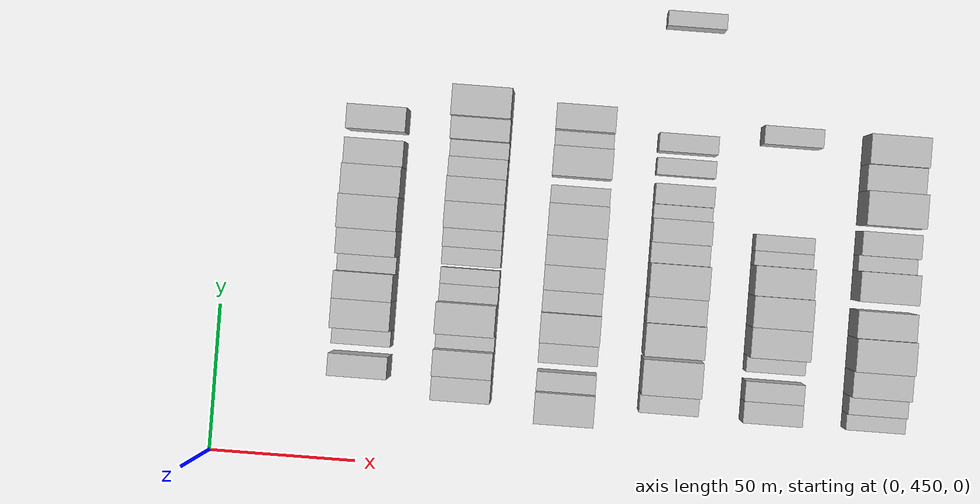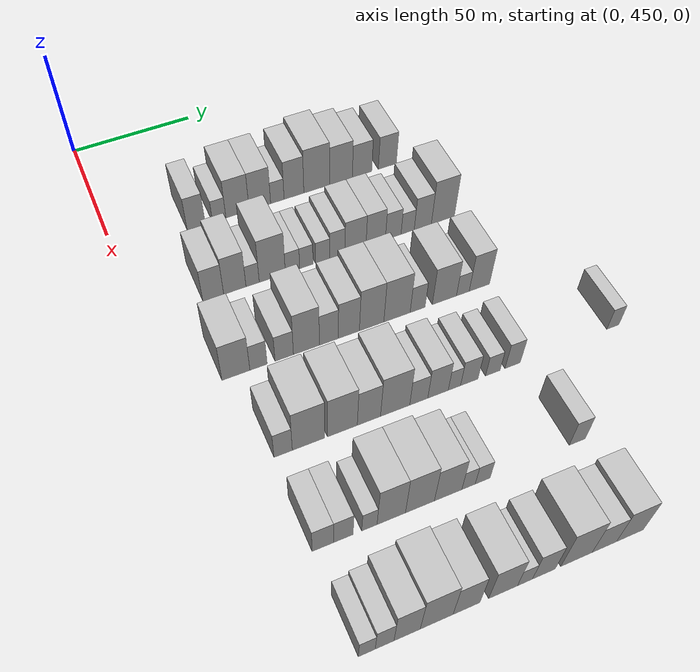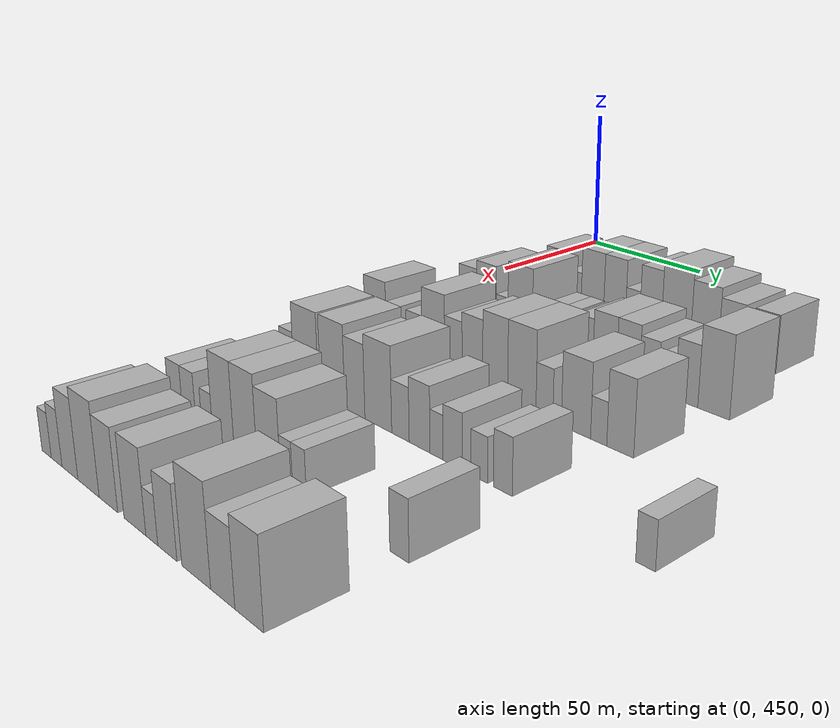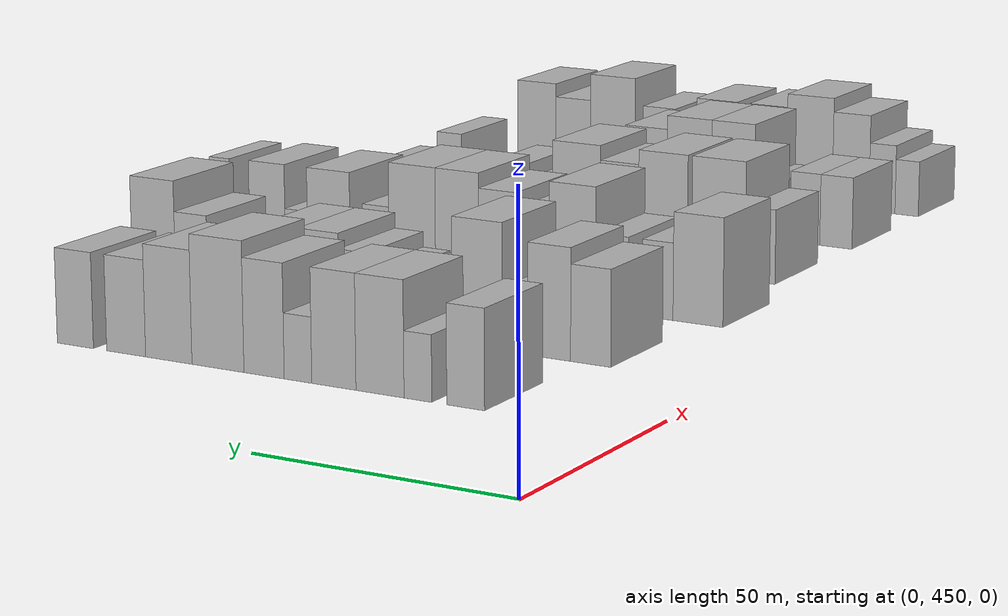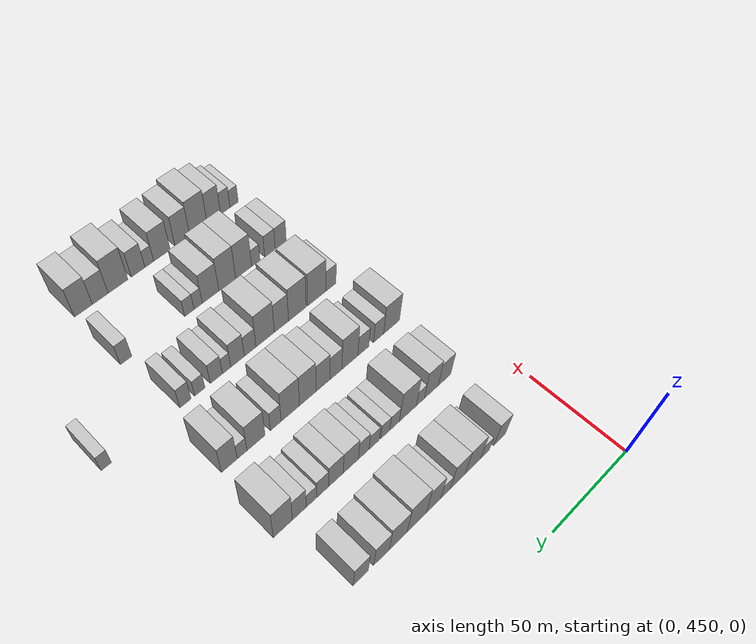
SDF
<sdf version="1.6">
 <world name="default">
  <model name="building_116">
   <static>1</static>
   <pose>50.0000 483.5216 0 0.000000 0.000000 0.000000</pose>
   <link name="link">
    <pose>0 0 9.00 0 0 0</pose>
    <collision name="collision"><geometry><box><size>20.0000 7.5172 18.0000</size></box></geometry></collision>
    <visual name="visual">
     <cast_shadows>0</cast_shadows>
     <geometry><box><size>20.0000 7.5172 18.0000</size></box></geometry>
     <material>
      <script>
       <uri>model://HANNAS_wall/materials/scripts</uri>
       <uri>model://HANNAS_wall/materials/textures</uri>
       <name>vrc/HANNAS_wall</name>
      </script>
     </material>
    </visual>
   </link>
  </model>
  <model name="building_117">
   <static>1</static>
   <pose>50.0000 493.0840 0 0.000000 0.000000 0.000000</pose>
   <link name="link">
    <pose>0 0 6.00 0 0 0</pose>
    <collision name="collision"><geometry><box><size>20.0000 5.6077 12.0000</size></box></geometry></collision>
    <visual name="visual">
     <cast_shadows>0</cast_shadows>
     <geometry><box><size>20.0000 5.6077 12.0000</size></box></geometry>
     <material>
      <script>
       <uri>model://HANNAS_wall/materials/scripts</uri>
       <uri>model://HANNAS_wall/materials/textures</uri>
       <name>vrc/HANNAS_wall</name>
      </script>
     </material>
    </visual>
   </link>
  </model>
  <model name="building_118">
   <static>1</static>
   <pose>50.0000 500.8014 0 0.000000 0.000000 0.000000</pose>
   <link name="link">
    <pose>0 0 10.50 0 0 0</pose>
    <collision name="collision"><geometry><box><size>20.0000 9.8270 21.0000</size></box></geometry></collision>
    <visual name="visual">
     <cast_shadows>0</cast_shadows>
     <geometry><box><size>20.0000 9.8270 21.0000</size></box></geometry>
     <material>
      <script>
       <uri>model://HANNAS_wall/materials/scripts</uri>
       <uri>model://HANNAS_wall/materials/textures</uri>
       <name>vrc/HANNAS_wall</name>
      </script>
     </material>
    </visual>
   </link>
  </model>
  <model name="building_119">
   <static>1</static>
   <pose>50.0000 510.3092 0 0.000000 0.000000 0.000000</pose>
   <link name="link">
    <pose>0 0 10.50 0 0 0</pose>
    <collision name="collision"><geometry><box><size>20.0000 9.1886 21.0000</size></box></geometry></collision>
    <visual name="visual">
     <cast_shadows>0</cast_shadows>
     <geometry><box><size>20.0000 9.1886 21.0000</size></box></geometry>
     <material>
      <script>
       <uri>model://HANNAS_wall/materials/scripts</uri>
       <uri>model://HANNAS_wall/materials/textures</uri>
       <name>vrc/HANNAS_wall</name>
      </script>
     </material>
    </visual>
   </link>
  </model>
  <model name="building_120">
   <static>1</static>
   <pose>50.0000 517.8039 0 0.000000 0.000000 0.000000</pose>
   <link name="link">
    <pose>0 0 6.00 0 0 0</pose>
    <collision name="collision"><geometry><box><size>20.0000 5.8008 12.0000</size></box></geometry></collision>
    <visual name="visual">
     <cast_shadows>0</cast_shadows>
     <geometry><box><size>20.0000 5.8008 12.0000</size></box></geometry>
     <material>
      <script>
       <uri>model://HANNAS_wall/materials/scripts</uri>
       <uri>model://HANNAS_wall/materials/textures</uri>
       <name>vrc/HANNAS_wall</name>
      </script>
     </material>
    </visual>
   </link>
  </model>
  <model name="building_121">
   <static>1</static>
   <pose>50.0000 524.9991 0 0.000000 0.000000 0.000000</pose>
   <link name="link">
    <pose>0 0 10.50 0 0 0</pose>
    <collision name="collision"><geometry><box><size>20.0000 8.5896 21.0000</size></box></geometry></collision>
    <visual name="visual">
     <cast_shadows>0</cast_shadows>
     <geometry><box><size>20.0000 8.5896 21.0000</size></box></geometry>
     <material>
      <script>
       <uri>model://HANNAS_wall/materials/scripts</uri>
       <uri>model://HANNAS_wall/materials/textures</uri>
       <name>vrc/HANNAS_wall</name>
      </script>
     </material>
    </visual>
   </link>
  </model>
  <model name="building_122">
   <static>1</static>
   <pose>50.0000 534.9274 0 0.000000 0.000000 0.000000</pose>
   <link name="link">
    <pose>0 0 12.00 0 0 0</pose>
    <collision name="collision"><geometry><box><size>20.0000 11.2670 24.0000</size></box></geometry></collision>
    <visual name="visual">
     <cast_shadows>0</cast_shadows>
     <geometry><box><size>20.0000 11.2670 24.0000</size></box></geometry>
     <material>
      <script>
       <uri>model://HANNAS_wall/materials/scripts</uri>
       <uri>model://HANNAS_wall/materials/textures</uri>
       <name>vrc/HANNAS_wall</name>
      </script>
     </material>
    </visual>
   </link>
  </model>
  <model name="building_123">
   <static>1</static>
   <pose>50.0000 545.6705 0 0.000000 0.000000 0.000000</pose>
   <link name="link">
    <pose>0 0 10.50 0 0 0</pose>
    <collision name="collision"><geometry><box><size>20.0000 10.2193 21.0000</size></box></geometry></collision>
    <visual name="visual">
     <cast_shadows>0</cast_shadows>
     <geometry><box><size>20.0000 10.2193 21.0000</size></box></geometry>
     <material>
      <script>
       <uri>model://HANNAS_wall/materials/scripts</uri>
       <uri>model://HANNAS_wall/materials/textures</uri>
       <name>vrc/HANNAS_wall</name>
      </script>
     </material>
    </visual>
   </link>
  </model>
  <model name="building_124">
   <static>1</static>
   <pose>50.0000 555.1453 0 0.000000 0.000000 0.000000</pose>
   <link name="link">
    <pose>0 0 9.00 0 0 0</pose>
    <collision name="collision"><geometry><box><size>20.0000 8.7303 18.0000</size></box></geometry></collision>
    <visual name="visual">
     <cast_shadows>0</cast_shadows>
     <geometry><box><size>20.0000 8.7303 18.0000</size></box></geometry>
     <material>
      <script>
       <uri>model://HANNAS_wall/materials/scripts</uri>
       <uri>model://HANNAS_wall/materials/textures</uri>
       <name>vrc/HANNAS_wall</name>
      </script>
     </material>
    </visual>
   </link>
  </model>
  <model name="building_125">
   <static>1</static>
   <pose>50.0000 566.6297 0 0.000000 0.000000 0.000000</pose>
   <link name="link">
    <pose>0 0 9.00 0 0 0</pose>
    <collision name="collision"><geometry><box><size>20.0000 8.2386 18.0000</size></box></geometry></collision>
    <visual name="visual">
     <cast_shadows>0</cast_shadows>
     <geometry><box><size>20.0000 8.2386 18.0000</size></box></geometry>
     <material>
      <script>
       <uri>model://HANNAS_wall/materials/scripts</uri>
       <uri>model://HANNAS_wall/materials/textures</uri>
       <name>vrc/HANNAS_wall</name>
      </script>
     </material>
    </visual>
   </link>
  </model>
  <model name="building_248">
   <static>1</static>
   <pose>85.0000 478.3432 0 0.000000 0.000000 0.000000</pose>
   <link name="link">
    <pose>0 0 9.00 0 0 0</pose>
    <collision name="collision"><geometry><box><size>20.0000 8.2118 18.0000</size></box></geometry></collision>
    <visual name="visual">
     <cast_shadows>0</cast_shadows>
     <geometry><box><size>20.0000 8.2118 18.0000</size></box></geometry>
     <material>
      <script>
       <uri>model://HANNAS_wall/materials/scripts</uri>
       <uri>model://HANNAS_wall/materials/textures</uri>
       <name>vrc/HANNAS_wall</name>
      </script>
     </material>
    </visual>
   </link>
  </model>
  <model name="building_249">
   <static>1</static>
   <pose>85.0000 486.9014 0 0.000000 0.000000 0.000000</pose>
   <link name="link">
    <pose>0 0 10.50 0 0 0</pose>
    <collision name="collision"><geometry><box><size>20.0000 8.9047 21.0000</size></box></geometry></collision>
    <visual name="visual">
     <cast_shadows>0</cast_shadows>
     <geometry><box><size>20.0000 8.9047 21.0000</size></box></geometry>
     <material>
      <script>
       <uri>model://HANNAS_wall/materials/scripts</uri>
       <uri>model://HANNAS_wall/materials/textures</uri>
       <name>vrc/HANNAS_wall</name>
      </script>
     </material>
    </visual>
   </link>
  </model>
  <model name="building_250">
   <static>1</static>
   <pose>85.0000 494.0122 0 0.000000 0.000000 0.000000</pose>
   <link name="link">
    <pose>0 0 6.00 0 0 0</pose>
    <collision name="collision"><geometry><box><size>20.0000 5.3167 12.0000</size></box></geometry></collision>
    <visual name="visual">
     <cast_shadows>0</cast_shadows>
     <geometry><box><size>20.0000 5.3167 12.0000</size></box></geometry>
     <material>
      <script>
       <uri>model://HANNAS_wall/materials/scripts</uri>
       <uri>model://HANNAS_wall/materials/textures</uri>
       <name>vrc/HANNAS_wall</name>
      </script>
     </material>
    </visual>
   </link>
  </model>
  <model name="building_251">
   <static>1</static>
   <pose>85.0000 501.9636 0 0.000000 0.000000 0.000000</pose>
   <link name="link">
    <pose>0 0 12.00 0 0 0</pose>
    <collision name="collision"><geometry><box><size>20.0000 10.5862 24.0000</size></box></geometry></collision>
    <visual name="visual">
     <cast_shadows>0</cast_shadows>
     <geometry><box><size>20.0000 10.5862 24.0000</size></box></geometry>
     <material>
      <script>
       <uri>model://HANNAS_wall/materials/scripts</uri>
       <uri>model://HANNAS_wall/materials/textures</uri>
       <name>vrc/HANNAS_wall</name>
      </script>
     </material>
    </visual>
   </link>
  </model>
  <model name="building_252">
   <static>1</static>
   <pose>85.0000 510.1905 0 0.000000 0.000000 0.000000</pose>
   <link name="link">
    <pose>0 0 6.00 0 0 0</pose>
    <collision name="collision"><geometry><box><size>20.0000 5.8675 12.0000</size></box></geometry></collision>
    <visual name="visual">
     <cast_shadows>0</cast_shadows>
     <geometry><box><size>20.0000 5.8675 12.0000</size></box></geometry>
     <material>
      <script>
       <uri>model://HANNAS_wall/materials/scripts</uri>
       <uri>model://HANNAS_wall/materials/textures</uri>
       <name>vrc/HANNAS_wall</name>
      </script>
     </material>
    </visual>
   </link>
  </model>
  <model name="building_253">
   <static>1</static>
   <pose>85.0000 515.8932 0 0.000000 0.000000 0.000000</pose>
   <link name="link">
    <pose>0 0 6.00 0 0 0</pose>
    <collision name="collision"><geometry><box><size>20.0000 5.5378 12.0000</size></box></geometry></collision>
    <visual name="visual">
     <cast_shadows>0</cast_shadows>
     <geometry><box><size>20.0000 5.5378 12.0000</size></box></geometry>
     <material>
      <script>
       <uri>model://HANNAS_wall/materials/scripts</uri>
       <uri>model://HANNAS_wall/materials/textures</uri>
       <name>vrc/HANNAS_wall</name>
      </script>
     </material>
    </visual>
   </link>
  </model>
  <model name="building_254">
   <static>1</static>
   <pose>85.0000 522.6562 0 0.000000 0.000000 0.000000</pose>
   <link name="link">
    <pose>0 0 6.00 0 0 0</pose>
    <collision name="collision"><geometry><box><size>20.0000 5.9884 12.0000</size></box></geometry></collision>
    <visual name="visual">
     <cast_shadows>0</cast_shadows>
     <geometry><box><size>20.0000 5.9884 12.0000</size></box></geometry>
     <material>
      <script>
       <uri>model://HANNAS_wall/materials/scripts</uri>
       <uri>model://HANNAS_wall/materials/textures</uri>
       <name>vrc/HANNAS_wall</name>
      </script>
     </material>
    </visual>
   </link>
  </model>
  <model name="building_255">
   <static>1</static>
   <pose>85.0000 528.7964 0 0.000000 0.000000 0.000000</pose>
   <link name="link">
    <pose>0 0 7.50 0 0 0</pose>
    <collision name="collision"><geometry><box><size>20.0000 6.2919 15.0000</size></box></geometry></collision>
    <visual name="visual">
     <cast_shadows>0</cast_shadows>
     <geometry><box><size>20.0000 6.2919 15.0000</size></box></geometry>
     <material>
      <script>
       <uri>model://HANNAS_wall/materials/scripts</uri>
       <uri>model://HANNAS_wall/materials/textures</uri>
       <name>vrc/HANNAS_wall</name>
      </script>
     </material>
    </visual>
   </link>
  </model>
  <model name="building_256">
   <static>1</static>
   <pose>85.0000 536.4302 0 0.000000 0.000000 0.000000</pose>
   <link name="link">
    <pose>0 0 9.00 0 0 0</pose>
    <collision name="collision"><geometry><box><size>20.0000 8.9757 18.0000</size></box></geometry></collision>
    <visual name="visual">
     <cast_shadows>0</cast_shadows>
     <geometry><box><size>20.0000 8.9757 18.0000</size></box></geometry>
     <material>
      <script>
       <uri>model://HANNAS_wall/materials/scripts</uri>
       <uri>model://HANNAS_wall/materials/textures</uri>
       <name>vrc/HANNAS_wall</name>
      </script>
     </material>
    </visual>
   </link>
  </model>
  <model name="building_257">
   <static>1</static>
   <pose>85.0000 545.0692 0 0.000000 0.000000 0.000000</pose>
   <link name="link">
    <pose>0 0 9.00 0 0 0</pose>
    <collision name="collision"><geometry><box><size>20.0000 8.3023 18.0000</size></box></geometry></collision>
    <visual name="visual">
     <cast_shadows>0</cast_shadows>
     <geometry><box><size>20.0000 8.3023 18.0000</size></box></geometry>
     <material>
      <script>
       <uri>model://HANNAS_wall/materials/scripts</uri>
       <uri>model://HANNAS_wall/materials/textures</uri>
       <name>vrc/HANNAS_wall</name>
      </script>
     </material>
    </visual>
   </link>
  </model>
  <model name="building_258">
   <static>1</static>
   <pose>85.0000 552.6063 0 0.000000 0.000000 0.000000</pose>
   <link name="link">
    <pose>0 0 7.50 0 0 0</pose>
    <collision name="collision"><geometry><box><size>20.0000 6.7719 15.0000</size></box></geometry></collision>
    <visual name="visual">
     <cast_shadows>0</cast_shadows>
     <geometry><box><size>20.0000 6.7719 15.0000</size></box></geometry>
     <material>
      <script>
       <uri>model://HANNAS_wall/materials/scripts</uri>
       <uri>model://HANNAS_wall/materials/textures</uri>
       <name>vrc/HANNAS_wall</name>
      </script>
     </material>
    </visual>
   </link>
  </model>
  <model name="building_259">
   <static>1</static>
   <pose>85.0000 558.8656 0 0.000000 0.000000 0.000000</pose>
   <link name="link">
    <pose>0 0 6.00 0 0 0</pose>
    <collision name="collision"><geometry><box><size>20.0000 5.7467 12.0000</size></box></geometry></collision>
    <visual name="visual">
     <cast_shadows>0</cast_shadows>
     <geometry><box><size>20.0000 5.7467 12.0000</size></box></geometry>
     <material>
      <script>
       <uri>model://HANNAS_wall/materials/scripts</uri>
       <uri>model://HANNAS_wall/materials/textures</uri>
       <name>vrc/HANNAS_wall</name>
      </script>
     </material>
    </visual>
   </link>
  </model>
  <model name="building_260">
   <static>1</static>
   <pose>85.0000 565.5076 0 0.000000 0.000000 0.000000</pose>
   <link name="link">
    <pose>0 0 9.00 0 0 0</pose>
    <collision name="collision"><geometry><box><size>20.0000 7.5373 18.0000</size></box></geometry></collision>
    <visual name="visual">
     <cast_shadows>0</cast_shadows>
     <geometry><box><size>20.0000 7.5373 18.0000</size></box></geometry>
     <material>
      <script>
       <uri>model://HANNAS_wall/materials/scripts</uri>
       <uri>model://HANNAS_wall/materials/textures</uri>
       <name>vrc/HANNAS_wall</name>
      </script>
     </material>
    </visual>
   </link>
  </model>
  <model name="building_261">
   <static>1</static>
   <pose>85.0000 574.3885 0 0.000000 0.000000 0.000000</pose>
   <link name="link">
    <pose>0 0 12.00 0 0 0</pose>
    <collision name="collision"><geometry><box><size>20.0000 10.2246 24.0000</size></box></geometry></collision>
    <visual name="visual">
     <cast_shadows>0</cast_shadows>
     <geometry><box><size>20.0000 10.2246 24.0000</size></box></geometry>
     <material>
      <script>
       <uri>model://HANNAS_wall/materials/scripts</uri>
       <uri>model://HANNAS_wall/materials/textures</uri>
       <name>vrc/HANNAS_wall</name>
      </script>
     </material>
    </visual>
   </link>
  </model>
  <model name="building_369">
   <static>1</static>
   <pose>120.0000 474.5361 0 0.000000 0.000000 0.000000</pose>
   <link name="link">
    <pose>0 0 10.50 0 0 0</pose>
    <collision name="collision"><geometry><box><size>20.0000 10.4964 21.0000</size></box></geometry></collision>
    <visual name="visual">
     <cast_shadows>0</cast_shadows>
     <geometry><box><size>20.0000 10.4964 21.0000</size></box></geometry>
     <material>
      <script>
       <uri>model://HANNAS_wall/materials/scripts</uri>
       <uri>model://HANNAS_wall/materials/textures</uri>
       <name>vrc/HANNAS_wall</name>
      </script>
     </material>
    </visual>
   </link>
  </model>
  <model name="building_370">
   <static>1</static>
   <pose>120.0000 483.0600 0 0.000000 0.000000 0.000000</pose>
   <link name="link">
    <pose>0 0 7.50 0 0 0</pose>
    <collision name="collision"><geometry><box><size>20.0000 6.5514 15.0000</size></box></geometry></collision>
    <visual name="visual">
     <cast_shadows>0</cast_shadows>
     <geometry><box><size>20.0000 6.5514 15.0000</size></box></geometry>
     <material>
      <script>
       <uri>model://HANNAS_wall/materials/scripts</uri>
       <uri>model://HANNAS_wall/materials/textures</uri>
       <name>vrc/HANNAS_wall</name>
      </script>
     </material>
    </visual>
   </link>
  </model>
  <model name="building_371">
   <static>1</static>
   <pose>120.0000 492.8618 0 0.000000 0.000000 0.000000</pose>
   <link name="link">
    <pose>0 0 7.50 0 0 0</pose>
    <collision name="collision"><geometry><box><size>20.0000 7.0521 15.0000</size></box></geometry></collision>
    <visual name="visual">
     <cast_shadows>0</cast_shadows>
     <geometry><box><size>20.0000 7.0521 15.0000</size></box></geometry>
     <material>
      <script>
       <uri>model://HANNAS_wall/materials/scripts</uri>
       <uri>model://HANNAS_wall/materials/textures</uri>
       <name>vrc/HANNAS_wall</name>
      </script>
     </material>
    </visual>
   </link>
  </model>
  <model name="building_372">
   <static>1</static>
   <pose>120.0000 501.4267 0 0.000000 0.000000 0.000000</pose>
   <link name="link">
    <pose>0 0 12.00 0 0 0</pose>
    <collision name="collision"><geometry><box><size>20.0000 10.0778 24.0000</size></box></geometry></collision>
    <visual name="visual">
     <cast_shadows>0</cast_shadows>
     <geometry><box><size>20.0000 10.0778 24.0000</size></box></geometry>
     <material>
      <script>
       <uri>model://HANNAS_wall/materials/scripts</uri>
       <uri>model://HANNAS_wall/materials/textures</uri>
       <name>vrc/HANNAS_wall</name>
      </script>
     </material>
    </visual>
   </link>
  </model>
  <model name="building_373">
   <static>1</static>
   <pose>120.0000 510.1527 0 0.000000 0.000000 0.000000</pose>
   <link name="link">
    <pose>0 0 9.00 0 0 0</pose>
    <collision name="collision"><geometry><box><size>20.0000 7.3742 18.0000</size></box></geometry></collision>
    <visual name="visual">
     <cast_shadows>0</cast_shadows>
     <geometry><box><size>20.0000 7.3742 18.0000</size></box></geometry>
     <material>
      <script>
       <uri>model://HANNAS_wall/materials/scripts</uri>
       <uri>model://HANNAS_wall/materials/textures</uri>
       <name>vrc/HANNAS_wall</name>
      </script>
     </material>
    </visual>
   </link>
  </model>
  <model name="building_374">
   <static>1</static>
   <pose>120.0000 518.0558 0 0.000000 0.000000 0.000000</pose>
   <link name="link">
    <pose>0 0 10.50 0 0 0</pose>
    <collision name="collision"><geometry><box><size>20.0000 8.4321 21.0000</size></box></geometry></collision>
    <visual name="visual">
     <cast_shadows>0</cast_shadows>
     <geometry><box><size>20.0000 8.4321 21.0000</size></box></geometry>
     <material>
      <script>
       <uri>model://HANNAS_wall/materials/scripts</uri>
       <uri>model://HANNAS_wall/materials/textures</uri>
       <name>vrc/HANNAS_wall</name>
      </script>
     </material>
    </visual>
   </link>
  </model>
  <model name="building_375">
   <static>1</static>
   <pose>120.0000 527.1910 0 0.000000 0.000000 0.000000</pose>
   <link name="link">
    <pose>0 0 12.00 0 0 0</pose>
    <collision name="collision"><geometry><box><size>20.0000 9.8383 24.0000</size></box></geometry></collision>
    <visual name="visual">
     <cast_shadows>0</cast_shadows>
     <geometry><box><size>20.0000 9.8383 24.0000</size></box></geometry>
     <material>
      <script>
       <uri>model://HANNAS_wall/materials/scripts</uri>
       <uri>model://HANNAS_wall/materials/textures</uri>
       <name>vrc/HANNAS_wall</name>
      </script>
     </material>
    </visual>
   </link>
  </model>
  <model name="building_376">
   <static>1</static>
   <pose>120.0000 537.4657 0 0.000000 0.000000 0.000000</pose>
   <link name="link">
    <pose>0 0 12.00 0 0 0</pose>
    <collision name="collision"><geometry><box><size>20.0000 10.7111 24.0000</size></box></geometry></collision>
    <visual name="visual">
     <cast_shadows>0</cast_shadows>
     <geometry><box><size>20.0000 10.7111 24.0000</size></box></geometry>
     <material>
      <script>
       <uri>model://HANNAS_wall/materials/scripts</uri>
       <uri>model://HANNAS_wall/materials/textures</uri>
       <name>vrc/HANNAS_wall</name>
      </script>
     </material>
    </visual>
   </link>
  </model>
  <model name="building_377">
   <static>1</static>
   <pose>120.0000 545.8925 0 0.000000 0.000000 0.000000</pose>
   <link name="link">
    <pose>0 0 7.50 0 0 0</pose>
    <collision name="collision"><geometry><box><size>20.0000 6.1425 15.0000</size></box></geometry></collision>
    <visual name="visual">
     <cast_shadows>0</cast_shadows>
     <geometry><box><size>20.0000 6.1425 15.0000</size></box></geometry>
     <material>
      <script>
       <uri>model://HANNAS_wall/materials/scripts</uri>
       <uri>model://HANNAS_wall/materials/textures</uri>
       <name>vrc/HANNAS_wall</name>
      </script>
     </material>
    </visual>
   </link>
  </model>
  <model name="building_378">
   <static>1</static>
   <pose>120.0000 557.0140 0 0.000000 0.000000 0.000000</pose>
   <link name="link">
    <pose>0 0 10.50 0 0 0</pose>
    <collision name="collision"><geometry><box><size>20.0000 10.1005 21.0000</size></box></geometry></collision>
    <visual name="visual">
     <cast_shadows>0</cast_shadows>
     <geometry><box><size>20.0000 10.1005 21.0000</size></box></geometry>
     <material>
      <script>
       <uri>model://HANNAS_wall/materials/scripts</uri>
       <uri>model://HANNAS_wall/materials/textures</uri>
       <name>vrc/HANNAS_wall</name>
      </script>
     </material>
    </visual>
   </link>
  </model>
  <model name="building_379">
   <static>1</static>
   <pose>120.0000 564.7549 0 0.000000 0.000000 0.000000</pose>
   <link name="link">
    <pose>0 0 6.00 0 0 0</pose>
    <collision name="collision"><geometry><box><size>20.0000 5.3813 12.0000</size></box></geometry></collision>
    <visual name="visual">
     <cast_shadows>0</cast_shadows>
     <geometry><box><size>20.0000 5.3813 12.0000</size></box></geometry>
     <material>
      <script>
       <uri>model://HANNAS_wall/materials/scripts</uri>
       <uri>model://HANNAS_wall/materials/textures</uri>
       <name>vrc/HANNAS_wall</name>
      </script>
     </material>
    </visual>
   </link>
  </model>
  <model name="building_380">
   <static>1</static>
   <pose>120.0000 571.7618 0 0.000000 0.000000 0.000000</pose>
   <link name="link">
    <pose>0 0 10.50 0 0 0</pose>
    <collision name="collision"><geometry><box><size>20.0000 8.6325 21.0000</size></box></geometry></collision>
    <visual name="visual">
     <cast_shadows>0</cast_shadows>
     <geometry><box><size>20.0000 8.6325 21.0000</size></box></geometry>
     <material>
      <script>
       <uri>model://HANNAS_wall/materials/scripts</uri>
       <uri>model://HANNAS_wall/materials/textures</uri>
       <name>vrc/HANNAS_wall</name>
      </script>
     </material>
    </visual>
   </link>
  </model>
  <model name="building_495">
   <static>1</static>
   <pose>155.0000 478.5108 0 0.000000 0.000000 0.000000</pose>
   <link name="link">
    <pose>0 0 7.50 0 0 0</pose>
    <collision name="collision"><geometry><box><size>20.0000 6.5893 15.0000</size></box></geometry></collision>
    <visual name="visual">
     <cast_shadows>0</cast_shadows>
     <geometry><box><size>20.0000 6.5893 15.0000</size></box></geometry>
     <material>
      <script>
       <uri>model://HANNAS_wall/materials/scripts</uri>
       <uri>model://HANNAS_wall/materials/textures</uri>
       <name>vrc/HANNAS_wall</name>
      </script>
     </material>
    </visual>
   </link>
  </model>
  <model name="building_496">
   <static>1</static>
   <pose>155.0000 487.7105 0 0.000000 0.000000 0.000000</pose>
   <link name="link">
    <pose>0 0 12.00 0 0 0</pose>
    <collision name="collision"><geometry><box><size>20.0000 11.8101 24.0000</size></box></geometry></collision>
    <visual name="visual">
     <cast_shadows>0</cast_shadows>
     <geometry><box><size>20.0000 11.8101 24.0000</size></box></geometry>
     <material>
      <script>
       <uri>model://HANNAS_wall/materials/scripts</uri>
       <uri>model://HANNAS_wall/materials/textures</uri>
       <name>vrc/HANNAS_wall</name>
      </script>
     </material>
    </visual>
   </link>
  </model>
  <model name="building_497">
   <static>1</static>
   <pose>155.0000 500.1315 0 0.000000 0.000000 0.000000</pose>
   <link name="link">
    <pose>0 0 12.00 0 0 0</pose>
    <collision name="collision"><geometry><box><size>20.0000 11.0320 24.0000</size></box></geometry></collision>
    <visual name="visual">
     <cast_shadows>0</cast_shadows>
     <geometry><box><size>20.0000 11.0320 24.0000</size></box></geometry>
     <material>
      <script>
       <uri>model://HANNAS_wall/materials/scripts</uri>
       <uri>model://HANNAS_wall/materials/textures</uri>
       <name>vrc/HANNAS_wall</name>
      </script>
     </material>
    </visual>
   </link>
  </model>
  <model name="building_498">
   <static>1</static>
   <pose>155.0000 510.0110 0 0.000000 0.000000 0.000000</pose>
   <link name="link">
    <pose>0 0 10.50 0 0 0</pose>
    <collision name="collision"><geometry><box><size>20.0000 8.7270 21.0000</size></box></geometry></collision>
    <visual name="visual">
     <cast_shadows>0</cast_shadows>
     <geometry><box><size>20.0000 8.7270 21.0000</size></box></geometry>
     <material>
      <script>
       <uri>model://HANNAS_wall/materials/scripts</uri>
       <uri>model://HANNAS_wall/materials/textures</uri>
       <name>vrc/HANNAS_wall</name>
      </script>
     </material>
    </visual>
   </link>
  </model>
  <model name="building_499">
   <static>1</static>
   <pose>155.0000 519.9448 0 0.000000 0.000000 0.000000</pose>
   <link name="link">
    <pose>0 0 12.00 0 0 0</pose>
    <collision name="collision"><geometry><box><size>20.0000 11.1406 24.0000</size></box></geometry></collision>
    <visual name="visual">
     <cast_shadows>0</cast_shadows>
     <geometry><box><size>20.0000 11.1406 24.0000</size></box></geometry>
     <material>
      <script>
       <uri>model://HANNAS_wall/materials/scripts</uri>
       <uri>model://HANNAS_wall/materials/textures</uri>
       <name>vrc/HANNAS_wall</name>
      </script>
     </material>
    </visual>
   </link>
  </model>
  <model name="building_500">
   <static>1</static>
   <pose>155.0000 528.9995 0 0.000000 0.000000 0.000000</pose>
   <link name="link">
    <pose>0 0 7.50 0 0 0</pose>
    <collision name="collision"><geometry><box><size>20.0000 6.9689 15.0000</size></box></geometry></collision>
    <visual name="visual">
     <cast_shadows>0</cast_shadows>
     <geometry><box><size>20.0000 6.9689 15.0000</size></box></geometry>
     <material>
      <script>
       <uri>model://HANNAS_wall/materials/scripts</uri>
       <uri>model://HANNAS_wall/materials/textures</uri>
       <name>vrc/HANNAS_wall</name>
      </script>
     </material>
    </visual>
   </link>
  </model>
  <model name="building_501">
   <static>1</static>
   <pose>155.0000 536.4758 0 0.000000 0.000000 0.000000</pose>
   <link name="link">
    <pose>0 0 9.00 0 0 0</pose>
    <collision name="collision"><geometry><box><size>20.0000 7.9837 18.0000</size></box></geometry></collision>
    <visual name="visual">
     <cast_shadows>0</cast_shadows>
     <geometry><box><size>20.0000 7.9837 18.0000</size></box></geometry>
     <material>
      <script>
       <uri>model://HANNAS_wall/materials/scripts</uri>
       <uri>model://HANNAS_wall/materials/textures</uri>
       <name>vrc/HANNAS_wall</name>
      </script>
     </material>
    </visual>
   </link>
  </model>
  <model name="building_502">
   <static>1</static>
   <pose>155.0000 542.8813 0 0.000000 0.000000 0.000000</pose>
   <link name="link">
    <pose>0 0 6.00 0 0 0</pose>
    <collision name="collision"><geometry><box><size>20.0000 4.8272 12.0000</size></box></geometry></collision>
    <visual name="visual">
     <cast_shadows>0</cast_shadows>
     <geometry><box><size>20.0000 4.8272 12.0000</size></box></geometry>
     <material>
      <script>
       <uri>model://HANNAS_wall/materials/scripts</uri>
       <uri>model://HANNAS_wall/materials/textures</uri>
       <name>vrc/HANNAS_wall</name>
      </script>
     </material>
    </visual>
   </link>
  </model>
  <model name="building_503">
   <static>1</static>
   <pose>155.0000 548.7630 0 0.000000 0.000000 0.000000</pose>
   <link name="link">
    <pose>0 0 7.50 0 0 0</pose>
    <collision name="collision"><geometry><box><size>20.0000 6.9361 15.0000</size></box></geometry></collision>
    <visual name="visual">
     <cast_shadows>0</cast_shadows>
     <geometry><box><size>20.0000 6.9361 15.0000</size></box></geometry>
     <material>
      <script>
       <uri>model://HANNAS_wall/materials/scripts</uri>
       <uri>model://HANNAS_wall/materials/textures</uri>
       <name>vrc/HANNAS_wall</name>
      </script>
     </material>
    </visual>
   </link>
  </model>
  <model name="building_504">
   <static>1</static>
   <pose>155.0000 558.1350 0 0.000000 0.000000 0.000000</pose>
   <link name="link">
    <pose>0 0 6.00 0 0 0</pose>
    <collision name="collision"><geometry><box><size>20.0000 5.8079 12.0000</size></box></geometry></collision>
    <visual name="visual">
     <cast_shadows>0</cast_shadows>
     <geometry><box><size>20.0000 5.8079 12.0000</size></box></geometry>
     <material>
      <script>
       <uri>model://HANNAS_wall/materials/scripts</uri>
       <uri>model://HANNAS_wall/materials/textures</uri>
       <name>vrc/HANNAS_wall</name>
      </script>
     </material>
    </visual>
   </link>
  </model>
  <model name="building_505">
   <static>1</static>
   <pose>155.0000 566.1421 0 0.000000 0.000000 0.000000</pose>
   <link name="link">
    <pose>0 0 7.50 0 0 0</pose>
    <collision name="collision"><geometry><box><size>20.0000 6.2062 15.0000</size></box></geometry></collision>
    <visual name="visual">
     <cast_shadows>0</cast_shadows>
     <geometry><box><size>20.0000 6.2062 15.0000</size></box></geometry>
     <material>
      <script>
       <uri>model://HANNAS_wall/materials/scripts</uri>
       <uri>model://HANNAS_wall/materials/textures</uri>
       <name>vrc/HANNAS_wall</name>
      </script>
     </material>
    </visual>
   </link>
  </model>
  <model name="building_506">
   <static>1</static>
   <pose>155.0000 608.0205 0 0.000000 0.000000 0.000000</pose>
   <link name="link">
    <pose>0 0 6.00 0 0 0</pose>
    <collision name="collision"><geometry><box><size>20.0000 5.1836 12.0000</size></box></geometry></collision>
    <visual name="visual">
     <cast_shadows>0</cast_shadows>
     <geometry><box><size>20.0000 5.1836 12.0000</size></box></geometry>
     <material>
      <script>
       <uri>model://HANNAS_wall/materials/scripts</uri>
       <uri>model://HANNAS_wall/materials/textures</uri>
       <name>vrc/HANNAS_wall</name>
      </script>
     </material>
    </visual>
   </link>
  </model>
  <model name="building_625">
   <static>1</static>
   <pose>190.0000 477.9764 0 0.000000 0.000000 0.000000</pose>
   <link name="link">
    <pose>0 0 7.50 0 0 0</pose>
    <collision name="collision"><geometry><box><size>20.0000 7.2901 15.0000</size></box></geometry></collision>
    <visual name="visual">
     <cast_shadows>0</cast_shadows>
     <geometry><box><size>20.0000 7.2901 15.0000</size></box></geometry>
     <material>
      <script>
       <uri>model://HANNAS_wall/materials/scripts</uri>
       <uri>model://HANNAS_wall/materials/textures</uri>
       <name>vrc/HANNAS_wall</name>
      </script>
     </material>
    </visual>
   </link>
  </model>
  <model name="building_626">
   <static>1</static>
   <pose>190.0000 485.0138 0 0.000000 0.000000 0.000000</pose>
   <link name="link">
    <pose>0 0 7.50 0 0 0</pose>
    <collision name="collision"><geometry><box><size>20.0000 6.7848 15.0000</size></box></geometry></collision>
    <visual name="visual">
     <cast_shadows>0</cast_shadows>
     <geometry><box><size>20.0000 6.7848 15.0000</size></box></geometry>
     <material>
      <script>
       <uri>model://HANNAS_wall/materials/scripts</uri>
       <uri>model://HANNAS_wall/materials/textures</uri>
       <name>vrc/HANNAS_wall</name>
      </script>
     </material>
    </visual>
   </link>
  </model>
  <model name="building_627">
   <static>1</static>
   <pose>190.0000 494.0870 0 0.000000 0.000000 0.000000</pose>
   <link name="link">
    <pose>0 0 6.00 0 0 0</pose>
    <collision name="collision"><geometry><box><size>20.0000 5.3615 12.0000</size></box></geometry></collision>
    <visual name="visual">
     <cast_shadows>0</cast_shadows>
     <geometry><box><size>20.0000 5.3615 12.0000</size></box></geometry>
     <material>
      <script>
       <uri>model://HANNAS_wall/materials/scripts</uri>
       <uri>model://HANNAS_wall/materials/textures</uri>
       <name>vrc/HANNAS_wall</name>
      </script>
     </material>
    </visual>
   </link>
  </model>
  <model name="building_628">
   <static>1</static>
   <pose>190.0000 501.8026 0 0.000000 0.000000 0.000000</pose>
   <link name="link">
    <pose>0 0 12.00 0 0 0</pose>
    <collision name="collision"><geometry><box><size>20.0000 10.0697 24.0000</size></box></geometry></collision>
    <visual name="visual">
     <cast_shadows>0</cast_shadows>
     <geometry><box><size>20.0000 10.0697 24.0000</size></box></geometry>
     <material>
      <script>
       <uri>model://HANNAS_wall/materials/scripts</uri>
       <uri>model://HANNAS_wall/materials/textures</uri>
       <name>vrc/HANNAS_wall</name>
      </script>
     </material>
    </visual>
   </link>
  </model>
  <model name="building_629">
   <static>1</static>
   <pose>190.0000 512.0501 0 0.000000 0.000000 0.000000</pose>
   <link name="link">
    <pose>0 0 12.00 0 0 0</pose>
    <collision name="collision"><geometry><box><size>20.0000 10.4253 24.0000</size></box></geometry></collision>
    <visual name="visual">
     <cast_shadows>0</cast_shadows>
     <geometry><box><size>20.0000 10.4253 24.0000</size></box></geometry>
     <material>
      <script>
       <uri>model://HANNAS_wall/materials/scripts</uri>
       <uri>model://HANNAS_wall/materials/textures</uri>
       <name>vrc/HANNAS_wall</name>
      </script>
     </material>
    </visual>
   </link>
  </model>
  <model name="building_630">
   <static>1</static>
   <pose>190.0000 522.2748 0 0.000000 0.000000 0.000000</pose>
   <link name="link">
    <pose>0 0 10.50 0 0 0</pose>
    <collision name="collision"><geometry><box><size>20.0000 10.0242 21.0000</size></box></geometry></collision>
    <visual name="visual">
     <cast_shadows>0</cast_shadows>
     <geometry><box><size>20.0000 10.0242 21.0000</size></box></geometry>
     <material>
      <script>
       <uri>model://HANNAS_wall/materials/scripts</uri>
       <uri>model://HANNAS_wall/materials/textures</uri>
       <name>vrc/HANNAS_wall</name>
      </script>
     </material>
    </visual>
   </link>
  </model>
  <model name="building_631">
   <static>1</static>
   <pose>190.0000 529.7560 0 0.000000 0.000000 0.000000</pose>
   <link name="link">
    <pose>0 0 6.00 0 0 0</pose>
    <collision name="collision"><geometry><box><size>20.0000 4.9382 12.0000</size></box></geometry></collision>
    <visual name="visual">
     <cast_shadows>0</cast_shadows>
     <geometry><box><size>20.0000 4.9382 12.0000</size></box></geometry>
     <material>
      <script>
       <uri>model://HANNAS_wall/materials/scripts</uri>
       <uri>model://HANNAS_wall/materials/textures</uri>
       <name>vrc/HANNAS_wall</name>
      </script>
     </material>
    </visual>
   </link>
  </model>
  <model name="building_632">
   <static>1</static>
   <pose>190.0000 534.9861 0 0.000000 0.000000 0.000000</pose>
   <link name="link">
    <pose>0 0 6.00 0 0 0</pose>
    <collision name="collision"><geometry><box><size>20.0000 5.5220 12.0000</size></box></geometry></collision>
    <visual name="visual">
     <cast_shadows>0</cast_shadows>
     <geometry><box><size>20.0000 5.5220 12.0000</size></box></geometry>
     <material>
      <script>
       <uri>model://HANNAS_wall/materials/scripts</uri>
       <uri>model://HANNAS_wall/materials/textures</uri>
       <name>vrc/HANNAS_wall</name>
      </script>
     </material>
    </visual>
   </link>
  </model>
  <model name="building_633">
   <static>1</static>
   <pose>190.0000 571.1703 0 0.000000 0.000000 0.000000</pose>
   <link name="link">
    <pose>0 0 7.50 0 0 0</pose>
    <collision name="collision"><geometry><box><size>20.0000 6.2821 15.0000</size></box></geometry></collision>
    <visual name="visual">
     <cast_shadows>0</cast_shadows>
     <geometry><box><size>20.0000 6.2821 15.0000</size></box></geometry>
     <material>
      <script>
       <uri>model://HANNAS_wall/materials/scripts</uri>
       <uri>model://HANNAS_wall/materials/textures</uri>
       <name>vrc/HANNAS_wall</name>
      </script>
     </material>
    </visual>
   </link>
  </model>
  <model name="building_740">
   <static>1</static>
   <pose>225.0000 477.1505 0 0.000000 0.000000 0.000000</pose>
   <link name="link">
    <pose>0 0 6.00 0 0 0</pose>
    <collision name="collision"><geometry><box><size>20.0000 5.4518 12.0000</size></box></geometry></collision>
    <visual name="visual">
     <cast_shadows>0</cast_shadows>
     <geometry><box><size>20.0000 5.4518 12.0000</size></box></geometry>
     <material>
      <script>
       <uri>model://HANNAS_wall/materials/scripts</uri>
       <uri>model://HANNAS_wall/materials/textures</uri>
       <name>vrc/HANNAS_wall</name>
      </script>
     </material>
    </visual>
   </link>
  </model>
  <model name="building_741">
   <static>1</static>
   <pose>225.0000 482.9419 0 0.000000 0.000000 0.000000</pose>
   <link name="link">
    <pose>0 0 7.50 0 0 0</pose>
    <collision name="collision"><geometry><box><size>20.0000 6.1311 15.0000</size></box></geometry></collision>
    <visual name="visual">
     <cast_shadows>0</cast_shadows>
     <geometry><box><size>20.0000 6.1311 15.0000</size></box></geometry>
     <material>
      <script>
       <uri>model://HANNAS_wall/materials/scripts</uri>
       <uri>model://HANNAS_wall/materials/textures</uri>
       <name>vrc/HANNAS_wall</name>
      </script>
     </material>
    </visual>
   </link>
  </model>
  <model name="building_742">
   <static>1</static>
   <pose>225.0000 490.3736 0 0.000000 0.000000 0.000000</pose>
   <link name="link">
    <pose>0 0 10.50 0 0 0</pose>
    <collision name="collision"><geometry><box><size>20.0000 8.7322 21.0000</size></box></geometry></collision>
    <visual name="visual">
     <cast_shadows>0</cast_shadows>
     <geometry><box><size>20.0000 8.7322 21.0000</size></box></geometry>
     <material>
      <script>
       <uri>model://HANNAS_wall/materials/scripts</uri>
       <uri>model://HANNAS_wall/materials/textures</uri>
       <name>vrc/HANNAS_wall</name>
      </script>
     </material>
    </visual>
   </link>
  </model>
  <model name="building_743">
   <static>1</static>
   <pose>225.0000 500.2642 0 0.000000 0.000000 0.000000</pose>
   <link name="link">
    <pose>0 0 12.00 0 0 0</pose>
    <collision name="collision"><geometry><box><size>20.0000 11.0490 24.0000</size></box></geometry></collision>
    <visual name="visual">
     <cast_shadows>0</cast_shadows>
     <geometry><box><size>20.0000 11.0490 24.0000</size></box></geometry>
     <material>
      <script>
       <uri>model://HANNAS_wall/materials/scripts</uri>
       <uri>model://HANNAS_wall/materials/textures</uri>
       <name>vrc/HANNAS_wall</name>
      </script>
     </material>
    </visual>
   </link>
  </model>
  <model name="building_744">
   <static>1</static>
   <pose>225.0000 510.3834 0 0.000000 0.000000 0.000000</pose>
   <link name="link">
    <pose>0 0 10.50 0 0 0</pose>
    <collision name="collision"><geometry><box><size>20.0000 9.1894 21.0000</size></box></geometry></collision>
    <visual name="visual">
     <cast_shadows>0</cast_shadows>
     <geometry><box><size>20.0000 9.1894 21.0000</size></box></geometry>
     <material>
      <script>
       <uri>model://HANNAS_wall/materials/scripts</uri>
       <uri>model://HANNAS_wall/materials/textures</uri>
       <name>vrc/HANNAS_wall</name>
      </script>
     </material>
    </visual>
   </link>
  </model>
  <model name="building_745">
   <static>1</static>
   <pose>225.0000 523.0177 0 0.000000 0.000000 0.000000</pose>
   <link name="link">
    <pose>0 0 10.50 0 0 0</pose>
    <collision name="collision"><geometry><box><size>20.0000 10.0793 21.0000</size></box></geometry></collision>
    <visual name="visual">
     <cast_shadows>0</cast_shadows>
     <geometry><box><size>20.0000 10.0793 21.0000</size></box></geometry>
     <material>
      <script>
       <uri>model://HANNAS_wall/materials/scripts</uri>
       <uri>model://HANNAS_wall/materials/textures</uri>
       <name>vrc/HANNAS_wall</name>
      </script>
     </material>
    </visual>
   </link>
  </model>
  <model name="building_746">
   <static>1</static>
   <pose>225.0000 530.6892 0 0.000000 0.000000 0.000000</pose>
   <link name="link">
    <pose>0 0 6.00 0 0 0</pose>
    <collision name="collision"><geometry><box><size>20.0000 5.2636 12.0000</size></box></geometry></collision>
    <visual name="visual">
     <cast_shadows>0</cast_shadows>
     <geometry><box><size>20.0000 5.2636 12.0000</size></box></geometry>
     <material>
      <script>
       <uri>model://HANNAS_wall/materials/scripts</uri>
       <uri>model://HANNAS_wall/materials/textures</uri>
       <name>vrc/HANNAS_wall</name>
      </script>
     </material>
    </visual>
   </link>
  </model>
  <model name="building_747">
   <static>1</static>
   <pose>225.0000 537.3847 0 0.000000 0.000000 0.000000</pose>
   <link name="link">
    <pose>0 0 9.00 0 0 0</pose>
    <collision name="collision"><geometry><box><size>20.0000 8.1273 18.0000</size></box></geometry></collision>
    <visual name="visual">
     <cast_shadows>0</cast_shadows>
     <geometry><box><size>20.0000 8.1273 18.0000</size></box></geometry>
     <material>
      <script>
       <uri>model://HANNAS_wall/materials/scripts</uri>
       <uri>model://HANNAS_wall/materials/textures</uri>
       <name>vrc/HANNAS_wall</name>
      </script>
     </material>
    </visual>
   </link>
  </model>
  <model name="building_748">
   <static>1</static>
   <pose>225.0000 549.1628 0 0.000000 0.000000 0.000000</pose>
   <link name="link">
    <pose>0 0 12.00 0 0 0</pose>
    <collision name="collision"><geometry><box><size>20.0000 11.4289 24.0000</size></box></geometry></collision>
    <visual name="visual">
     <cast_shadows>0</cast_shadows>
     <geometry><box><size>20.0000 11.4289 24.0000</size></box></geometry>
     <material>
      <script>
       <uri>model://HANNAS_wall/materials/scripts</uri>
       <uri>model://HANNAS_wall/materials/textures</uri>
       <name>vrc/HANNAS_wall</name>
      </script>
     </material>
    </visual>
   </link>
  </model>
  <model name="building_749">
   <static>1</static>
   <pose>225.0000 559.3527 0 0.000000 0.000000 0.000000</pose>
   <link name="link">
    <pose>0 0 9.00 0 0 0</pose>
    <collision name="collision"><geometry><box><size>20.0000 8.9511 18.0000</size></box></geometry></collision>
    <visual name="visual">
     <cast_shadows>0</cast_shadows>
     <geometry><box><size>20.0000 8.9511 18.0000</size></box></geometry>
     <material>
      <script>
       <uri>model://HANNAS_wall/materials/scripts</uri>
       <uri>model://HANNAS_wall/materials/textures</uri>
       <name>vrc/HANNAS_wall</name>
      </script>
     </material>
    </visual>
   </link>
  </model>
  <model name="building_750">
   <static>1</static>
   <pose>225.0000 568.8605 0 0.000000 0.000000 0.000000</pose>
   <link name="link">
    <pose>0 0 10.50 0 0 0</pose>
    <collision name="collision"><geometry><box><size>20.0000 10.0646 21.0000</size></box></geometry></collision>
    <visual name="visual">
     <cast_shadows>0</cast_shadows>
     <geometry><box><size>20.0000 10.0646 21.0000</size></box></geometry>
     <material>
      <script>
       <uri>model://HANNAS_wall/materials/scripts</uri>
       <uri>model://HANNAS_wall/materials/textures</uri>
       <name>vrc/HANNAS_wall</name>
      </script>
     </material>
    </visual>
   </link>
  </model>
 </world>
</sdf>
